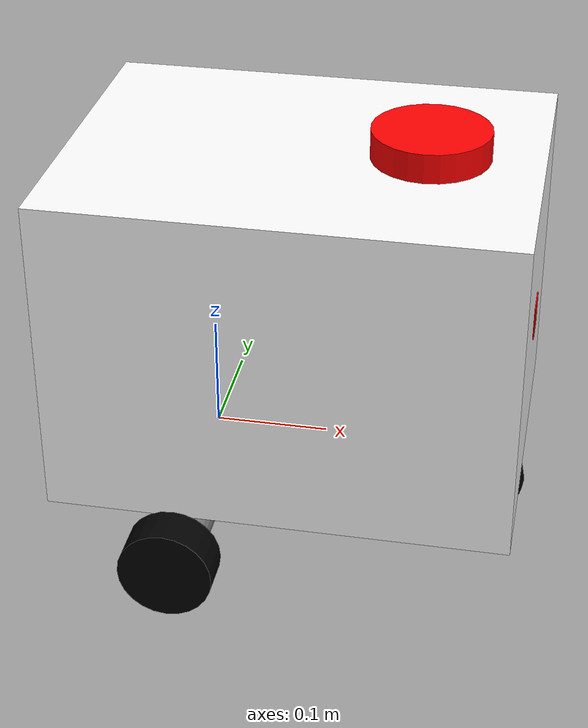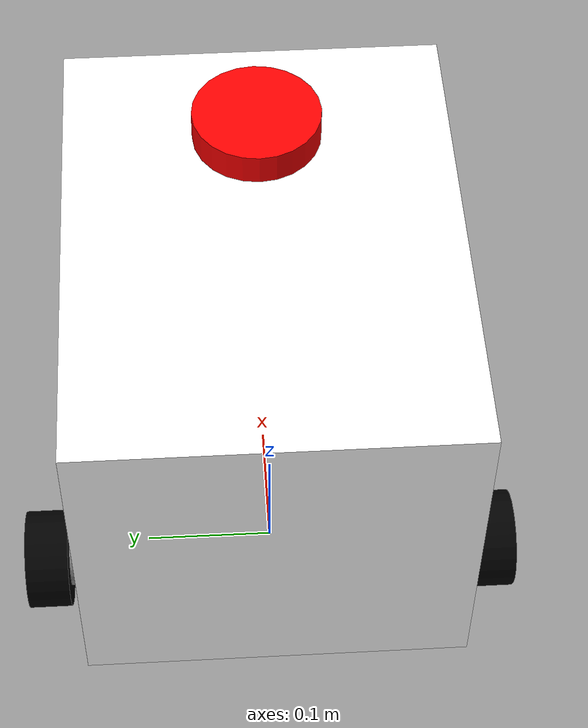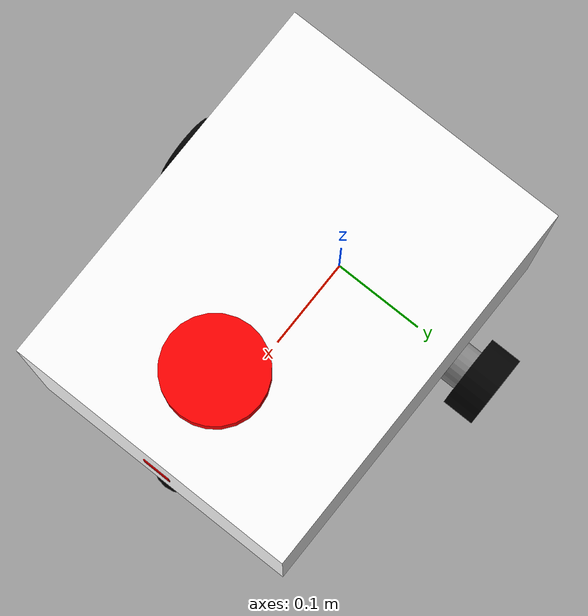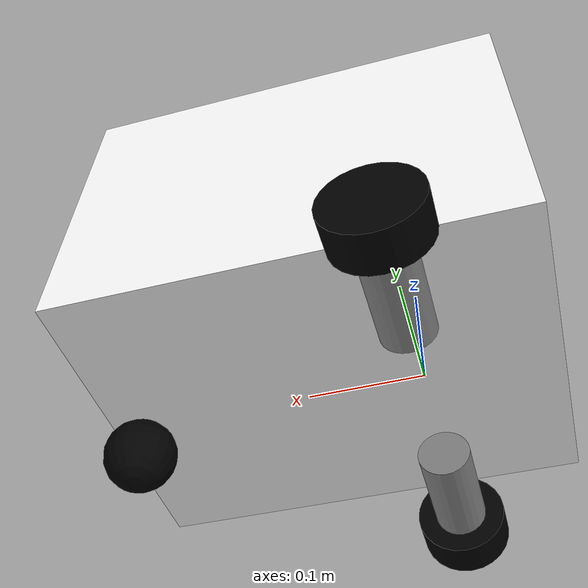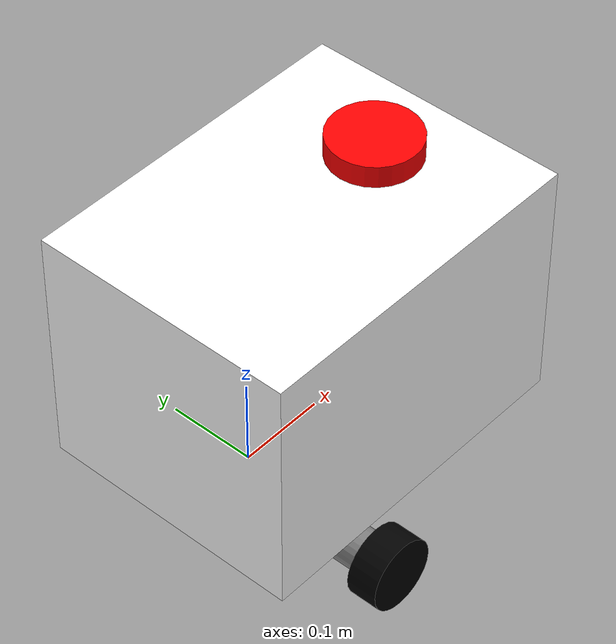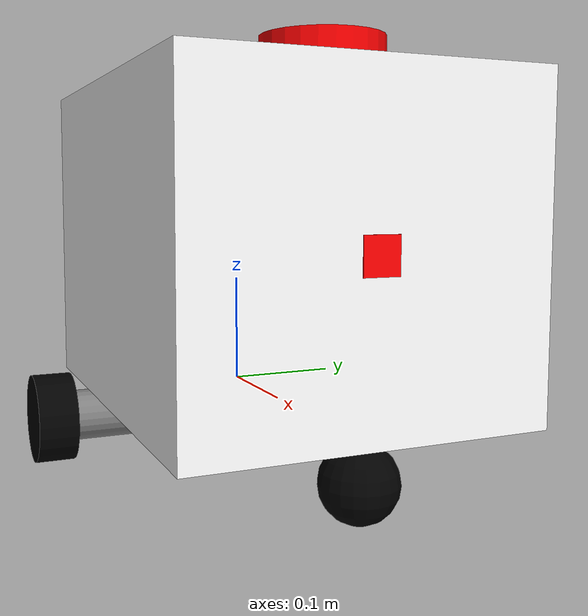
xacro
<?xml version="1.0"?>
<robot xmlns:xacro="http://www.ros.org/wiki/xacro"  name="robot">

    <xacro:include filename="robot_core.xacro" />
    <xacro:include filename="gazebo_control.xacro" />
    <xacro:include filename="lidar.xacro" />
    <xacro:include filename="camera.xacro" />
</robot>

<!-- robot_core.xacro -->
<robot xmlns:xacro="http://www.ros.org/wiki/xacro" name="robot">

    <!-- ================= MATERIALS ================= -->
    <material name="white"><color rgba="1 1 1 1"/></material>
    <material name="black"><color rgba="0 0 0 1"/></material>
    <material name="grey"><color rgba="0.5 0.5 0.5 1"/></material>
    <material name="red"><color rgba="1 0 0 1"/></material>

    <!-- ================= PROPERTIES ================= -->
    <xacro:property name="box_length" value="0.394"/>
    <xacro:property name="box_width"  value="0.300"/>
    <xacro:property name="box_height" value="0.280"/>

    <!-- ================= BASE LINK ================= -->
    <link name="base_link">
        <inertial>
            <origin xyz="0 0 0"/>
            <mass value="0.5"/>
            <inertia ixx="0.002" iyy="0.002" izz="0.002"
                     ixy="0" ixz="0" iyz="0"/>
        </inertial>
    </link>

    <!-- ================= CHASSIS ================= -->
    <joint name="chassis_joint" type="fixed">
        <origin xyz="-0.115 0 0"/>
        <parent link="base_link"/>
        <child link="chassis_link"/>
    </joint>

    <link name="chassis_link">
        <visual>
            <origin xyz="${box_length/2} 0 ${box_height/2}"/>
            <geometry>
                <box size="${box_length} ${box_width} ${box_height}"/>
            </geometry>
            <material name="white"/>
        </visual>
        <collision>
            <origin xyz="${box_length/2} 0 ${box_height/2}"/>
            <geometry>
                <box size="${box_length} ${box_width} ${box_height}"/>
            </geometry>
        </collision>
        <inertial>
            <origin xyz="${box_length/2} 0 ${box_height/2}"/>
            <mass value="8.0"/>
            <inertia
                ixx="${(1/12.0)*8*(box_width*box_width + box_height*box_height)}"
                iyy="${(1/12.0)*8*(box_length*box_length + box_height*box_height)}"
                izz="${(1/12.0)*8*(box_length*box_length + box_width*box_width)}"
                ixy="0" ixz="0" iyz="0"/>
        </inertial>
    </link>
    <gazebo reference="chassis_link">
        <material>Gazebo/White</material>
        <mu1>1.0</mu1>
        <mu2>1.0</mu2>
    </gazebo>

    <!-- ================= LEFT MOTOR ================= -->
    <joint name="left_motor_joint" type="fixed">
        <origin xyz="0 0.102 0"/>
        <parent link="base_link"/>
        <child link="left_motor_link"/>
    </joint>

    <link name="left_motor_link">
        <visual>
            <origin xyz="0 0.036 -0.023" rpy="${pi/2} 0 0"/>
            <geometry>
                <cylinder radius="0.023" length="0.126"/>
            </geometry>
            <material name="grey"/>
        </visual>
        <collision>
            <origin xyz="0 0.036 -0.023" rpy="${pi/2} 0 0"/>
            <geometry>
                <cylinder radius="0.023" length="0.126"/>
            </geometry>
        </collision>
        <inertial>
            <origin xyz="0 0.036 -0.023"/>
            <mass value="0.6"/>
            <inertia
                ixx="0.0009" iyy="0.0004" izz="0.0009"
                ixy="0" ixz="0" iyz="0"/>
        </inertial>
    </link>
    <gazebo reference="left_motor_link">
        <material>Gazebo/Grey</material>
    </gazebo>

    <!-- ================= LEFT WHEEL ================= -->
    <joint name="left_wheel_joint" type="continuous">
        <origin xyz="0 0.082 -0.023" rpy="-${pi/2} 0 0"/>
        <parent link="left_motor_link"/>
        <child link="left_wheel_link"/>
        <axis xyz="0 0 1"/>
        <limit effort="100" velocity="10.0"/>
        <dynamics damping="0.1" friction="0.1"/>
    </joint>

    <link name="left_wheel_link">
        <visual>
            <geometry>
                <cylinder radius="0.04" length="0.035"/>
            </geometry>
            <material name="black"/>
        </visual>
        <collision>
            <geometry>
                <sphere radius="0.04" />
            </geometry>
        </collision>
        <inertial>
            <mass value="0.4"/>
            <inertia
                ixx="0.00016" iyy="0.00032" izz="0.00016"
                ixy="0" ixz="0" iyz="0"/>
        </inertial>
    </link>
    <gazebo reference="left_wheel_link">
        <material>Gazebo/Black</material>
            <mu1>1.0</mu1>
        <mu2>1.0</mu2>
    </gazebo>

    <!-- ================= RIGHT MOTOR ================= -->
    <joint name="right_motor_joint" type="fixed">
        <origin xyz="0 -0.102 0"/>
        <parent link="base_link"/>
        <child link="right_motor_link"/>
    </joint>

    <link name="right_motor_link">
        <visual>
            <origin xyz="0 -0.036 -0.023" rpy="-${pi/2} 0 0"/>
            <geometry>
                <cylinder radius="0.023" length="0.126"/>
            </geometry>
            <material name="grey"/>
        </visual>
        <collision>
            <origin xyz="0 -0.036 -0.023" rpy="-${pi/2} 0 0"/>
            <geometry>
                <cylinder radius="0.023" length="0.126"/>
            </geometry>
        </collision>
        <inertial>
            <origin xyz="0 -0.036 -0.023"/>
            <mass value="0.6"/>
            <inertia
                ixx="0.0009" iyy="0.0004" izz="0.0009"
                ixy="0" ixz="0" iyz="0"/>
        </inertial>
    </link>
    <gazebo reference="right_motor_link">
        <material>Gazebo/Grey</material>
    </gazebo>

    <!-- ================= RIGHT WHEEL ================= -->
    <joint name="right_wheel_joint" type="continuous">
        <origin xyz="0 -0.082 -0.023" rpy="-${pi/2} 0 0"/>
        <parent link="right_motor_link"/>
        <child link="right_wheel_link"/>
        <axis xyz="0 0 1"/>
        <limit effort="100" velocity="10.0"/>
        <dynamics damping="0.1" friction="0.1"/>
    </joint>

    <link name="right_wheel_link">
        <visual>
            <geometry>
                <cylinder radius="0.04" length="0.035"/>
            </geometry>
            <material name="black"/>
        </visual>
        <collision>
            <geometry>
                <sphere radius="0.04" />
            </geometry>
        </collision>
        <inertial>
            <mass value="0.4"/>
            <inertia
                ixx="0.00016" iyy="0.00032" izz="0.00016"
                ixy="0" ixz="0" iyz="0"/>
        </inertial>
    </link>
    <gazebo reference="right_wheel_link">
        <material>Gazebo/Black</material>
        <mu1>1.0</mu1>
        <mu2>1.0</mu2>
    </gazebo>

    <!-- ================= CASTER ================= -->
    <joint name="caster_wheel_joint" type="fixed">
        <origin xyz="0.250 0 -0.0315"/>
        <parent link="base_link"/>
        <child link="caster_wheel_link"/>
    </joint>

    <link name="caster_wheel_link">
        <visual>
            <geometry>
                <sphere radius="0.0315"/>
            </geometry>
            <material name="black"/>
        </visual>
        <collision>
            <geometry>
                <sphere radius="0.0315"/>
            </geometry>
        </collision>
        <inertial>
            <mass value="0.2"/>
            <inertia
                ixx="0.00008" iyy="0.00008" izz="0.00008"
                ixy="0" ixz="0" iyz="0"/>
        </inertial>
    </link>
    <gazebo reference="caster_wheel_link">
        <material>Gazebo/Black</material>
        <mu1>0.000001</mu1>
        <mu2>0.000001</mu2>
    </gazebo>

</robot>

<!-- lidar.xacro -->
<robot xmlns:xacro="http://www.ros.org/wiki/xacro" >

    <joint name="laser_joint" type="fixed">
        <parent link="chassis_link"/>
        <child link="laser_frame"/>
        <origin xyz="0.3 0 0.285" rpy="0 0 0"/>
    </joint>

    <link name="laser_frame">
        <inertial>
            <mass value="0.2"/>
            <origin xyz="0 0 0" rpy="0 0 0"/>
            <inertia ixx="0.0001" ixy="0" ixz="0" iyy="0.0001" iyz="0" izz="0.0001"/>
        </inertial>
        <visual>
            <geometry>
                <cylinder radius="0.05" length="0.04"/>
            </geometry>
            <material name="red"/>
        </visual>
        <collision>
            <geometry>
                <cylinder radius="0.05" length="0.04"/>
            </geometry>
        </collision>

    </link>

    <gazebo reference="laser_frame">
        <sensor name="laser" type="gpu_lidar">
            <pose> 0 0 0 0 0 0 </pose>
            <visualize>true</visualize>
            <update_rate>10</update_rate>
            <lidar>
                <scan>
                    <horizontal>
                        <samples>360</samples>
                        <min_angle>-3.14</min_angle>
                        <max_angle>3.14</max_angle>
                    </horizontal>
                </scan>
                <range>
                    <min>0.3</min>
                    <max>12</max>
                </range>
            </lidar>
            <topic>scan</topic>
            <gz_frame_id>laser_frame</gz_frame_id>
        </sensor>
    </gazebo>

</robot>

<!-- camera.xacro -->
<robot xmlns:xacro="http://www.ros.org/wiki/xacro">

    <joint name="camera_joint" type="fixed">
        <parent link="chassis_link"/>
        <child link="camera_link"/>
        <origin xyz="0.390 0 0.140" rpy="0 0 0"/>
    </joint>

    <link name="camera_link">
        <visual>
            <geometry>
                <box size="0.010 0.03 0.03"/>
            </geometry>
            <material name="red"/>
        </visual>
    </link>
        <joint name="camera_optical_joint" type="fixed">
        <origin xyz="0 0 0" rpy="${-pi/2} 0 ${-pi/2}" />
        <parent link="camera_link" />
        <child link="camera_link_optical" />
    </joint>

    <link name="camera_link_optical"></link>
        <gazebo reference="camera_link">
        <sensor name="camera" type="camera">
            <pose> 0 0 0 0 0 0 </pose>
            <visualize>true</visualize>
            <update_rate>10</update_rate>
            <camera>
                <camera_info_topic>camera/camera_info</camera_info_topic>
                <horizontal_fov>1.089</horizontal_fov>
                <image>
                    <format>R8G8B8</format>
                    <width>640</width>
                    <height>480</height>
                </image>
                <clip>
                    <near>0.05</near>
                    <far>8.0</far>
                </clip>
            </camera>
            <topic>camera/image_raw</topic>
            <gz_frame_id>camera_link_optical</gz_frame_id>
        </sensor>
    </gazebo>
</robot>
